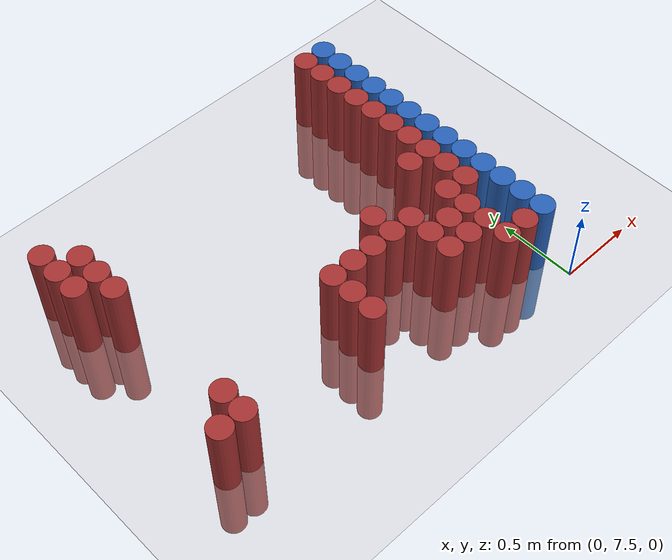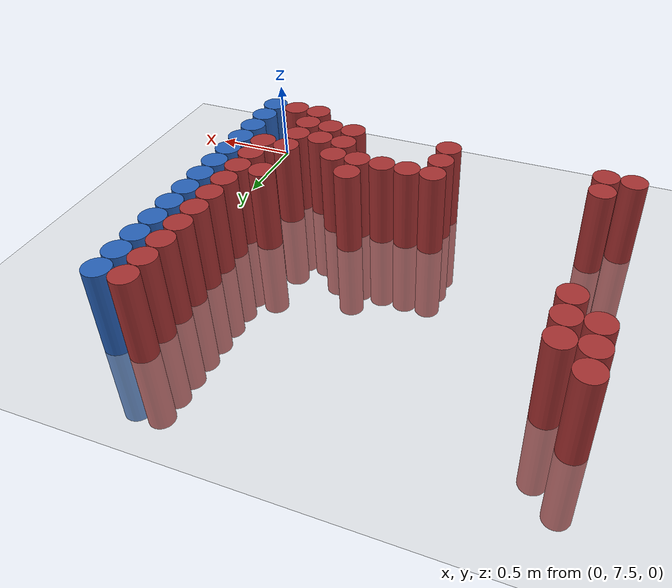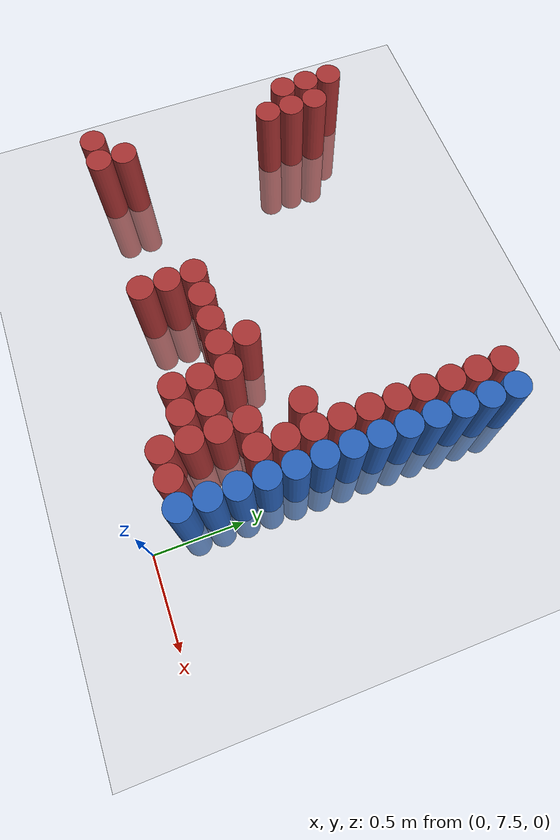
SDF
<sdf version="1.6">
 <world name="default">
  <model name="ground_plane">
   <static>1</static>
   <link name="link">
    <collision name="collision">
     <geometry><plane><normal>0 0 1</normal><size>100 100</size></plane></geometry>
     <surface><friction><ode><mu>100</mu><mu2>50</mu2></ode></friction></surface>
    </collision>
    <visual name="visual">
     <cast_shadows>0</cast_shadows>
     <geometry><plane><normal>0 0 1</normal><size>100 100</size></plane></geometry>
     <material>
      <script><uri>file://media/materials/scripts/gazebo.material</uri><name>Gazebo/Grey</name></script>
     </material>
    </visual>
   </link>
  </model>
  <model name="unit_cylinder_241">
   <static>1</static>
   <pose>-2.325000 7.875000 0.000000 0.000000 0.000000 0.000000</pose>
   <link name="link">
    <inertial>
     <mass>1</mass>
     <inertia><ixx>0.145833</ixx><ixy>0</ixy><ixz>0</ixz><iyy>0.145833</iyy><iyz>0</iyz><izz>0.125</izz></inertia>
    </inertial>
    <collision name="collision">
     <geometry><cylinder><radius>0.075000</radius><length>1</length></cylinder></geometry>
    </collision>
    <visual name="visual">
     <geometry><cylinder><radius>0.075000</radius><length>1</length></cylinder></geometry>
     <material>
      <ambient>0.648000 0.192000 0.192000 1</ambient>
      <diffuse>0.648000 0.192000 0.192000 1</diffuse>
     </material>
     <material>
      <script><name>Gazebo/Grey</name><uri>file://media/materials/scripts/gazebo.material</uri></script>
     </material>
    </visual>
   </link>
  </model>
  <model name="unit_cylinder_242">
   <static>1</static>
   <pose>-2.325000 9.075000 0.000000 0.000000 0.000000 0.000000</pose>
   <link name="link">
    <inertial>
     <mass>1</mass>
     <inertia><ixx>0.145833</ixx><ixy>0</ixy><ixz>0</ixz><iyy>0.145833</iyy><iyz>0</iyz><izz>0.125</izz></inertia>
    </inertial>
    <collision name="collision">
     <geometry><cylinder><radius>0.075000</radius><length>1</length></cylinder></geometry>
    </collision>
    <visual name="visual">
     <geometry><cylinder><radius>0.075000</radius><length>1</length></cylinder></geometry>
     <material>
      <ambient>0.648000 0.192000 0.192000 1</ambient>
      <diffuse>0.648000 0.192000 0.192000 1</diffuse>
     </material>
     <material>
      <script><name>Gazebo/Grey</name><uri>file://media/materials/scripts/gazebo.material</uri></script>
     </material>
    </visual>
   </link>
  </model>
  <model name="unit_cylinder_243">
   <static>1</static>
   <pose>-2.325000 9.225000 0.000000 0.000000 0.000000 0.000000</pose>
   <link name="link">
    <inertial>
     <mass>1</mass>
     <inertia><ixx>0.145833</ixx><ixy>0</ixy><ixz>0</ixz><iyy>0.145833</iyy><iyz>0</iyz><izz>0.125</izz></inertia>
    </inertial>
    <collision name="collision">
     <geometry><cylinder><radius>0.075000</radius><length>1</length></cylinder></geometry>
    </collision>
    <visual name="visual">
     <geometry><cylinder><radius>0.075000</radius><length>1</length></cylinder></geometry>
     <material>
      <ambient>0.648000 0.192000 0.192000 1</ambient>
      <diffuse>0.648000 0.192000 0.192000 1</diffuse>
     </material>
     <material>
      <script><name>Gazebo/Grey</name><uri>file://media/materials/scripts/gazebo.material</uri></script>
     </material>
    </visual>
   </link>
  </model>
  <model name="unit_cylinder_244">
   <static>1</static>
   <pose>-2.325000 9.375000 0.000000 0.000000 0.000000 0.000000</pose>
   <link name="link">
    <inertial>
     <mass>1</mass>
     <inertia><ixx>0.145833</ixx><ixy>0</ixy><ixz>0</ixz><iyy>0.145833</iyy><iyz>0</iyz><izz>0.125</izz></inertia>
    </inertial>
    <collision name="collision">
     <geometry><cylinder><radius>0.075000</radius><length>1</length></cylinder></geometry>
    </collision>
    <visual name="visual">
     <geometry><cylinder><radius>0.075000</radius><length>1</length></cylinder></geometry>
     <material>
      <ambient>0.648000 0.192000 0.192000 1</ambient>
      <diffuse>0.648000 0.192000 0.192000 1</diffuse>
     </material>
     <material>
      <script><name>Gazebo/Grey</name><uri>file://media/materials/scripts/gazebo.material</uri></script>
     </material>
    </visual>
   </link>
  </model>
  <model name="unit_cylinder_250">
   <static>1</static>
   <pose>-2.175000 7.875000 0.000000 0.000000 0.000000 0.000000</pose>
   <link name="link">
    <inertial>
     <mass>1</mass>
     <inertia><ixx>0.145833</ixx><ixy>0</ixy><ixz>0</ixz><iyy>0.145833</iyy><iyz>0</iyz><izz>0.125</izz></inertia>
    </inertial>
    <collision name="collision">
     <geometry><cylinder><radius>0.075000</radius><length>1</length></cylinder></geometry>
    </collision>
    <visual name="visual">
     <geometry><cylinder><radius>0.075000</radius><length>1</length></cylinder></geometry>
     <material>
      <ambient>0.648000 0.192000 0.192000 1</ambient>
      <diffuse>0.648000 0.192000 0.192000 1</diffuse>
     </material>
     <material>
      <script><name>Gazebo/Grey</name><uri>file://media/materials/scripts/gazebo.material</uri></script>
     </material>
    </visual>
   </link>
  </model>
  <model name="unit_cylinder_251">
   <static>1</static>
   <pose>-2.175000 8.025000 0.000000 0.000000 0.000000 0.000000</pose>
   <link name="link">
    <inertial>
     <mass>1</mass>
     <inertia><ixx>0.145833</ixx><ixy>0</ixy><ixz>0</ixz><iyy>0.145833</iyy><iyz>0</iyz><izz>0.125</izz></inertia>
    </inertial>
    <collision name="collision">
     <geometry><cylinder><radius>0.075000</radius><length>1</length></cylinder></geometry>
    </collision>
    <visual name="visual">
     <geometry><cylinder><radius>0.075000</radius><length>1</length></cylinder></geometry>
     <material>
      <ambient>0.648000 0.192000 0.192000 1</ambient>
      <diffuse>0.648000 0.192000 0.192000 1</diffuse>
     </material>
     <material>
      <script><name>Gazebo/Grey</name><uri>file://media/materials/scripts/gazebo.material</uri></script>
     </material>
    </visual>
   </link>
  </model>
  <model name="unit_cylinder_252">
   <static>1</static>
   <pose>-2.175000 8.925000 0.000000 0.000000 0.000000 0.000000</pose>
   <link name="link">
    <inertial>
     <mass>1</mass>
     <inertia><ixx>0.145833</ixx><ixy>0</ixy><ixz>0</ixz><iyy>0.145833</iyy><iyz>0</iyz><izz>0.125</izz></inertia>
    </inertial>
    <collision name="collision">
     <geometry><cylinder><radius>0.075000</radius><length>1</length></cylinder></geometry>
    </collision>
    <visual name="visual">
     <geometry><cylinder><radius>0.075000</radius><length>1</length></cylinder></geometry>
     <material>
      <ambient>0.648000 0.192000 0.192000 1</ambient>
      <diffuse>0.648000 0.192000 0.192000 1</diffuse>
     </material>
     <material>
      <script><name>Gazebo/Grey</name><uri>file://media/materials/scripts/gazebo.material</uri></script>
     </material>
    </visual>
   </link>
  </model>
  <model name="unit_cylinder_253">
   <static>1</static>
   <pose>-2.175000 9.075000 0.000000 0.000000 0.000000 0.000000</pose>
   <link name="link">
    <inertial>
     <mass>1</mass>
     <inertia><ixx>0.145833</ixx><ixy>0</ixy><ixz>0</ixz><iyy>0.145833</iyy><iyz>0</iyz><izz>0.125</izz></inertia>
    </inertial>
    <collision name="collision">
     <geometry><cylinder><radius>0.075000</radius><length>1</length></cylinder></geometry>
    </collision>
    <visual name="visual">
     <geometry><cylinder><radius>0.075000</radius><length>1</length></cylinder></geometry>
     <material>
      <ambient>0.648000 0.192000 0.192000 1</ambient>
      <diffuse>0.648000 0.192000 0.192000 1</diffuse>
     </material>
     <material>
      <script><name>Gazebo/Grey</name><uri>file://media/materials/scripts/gazebo.material</uri></script>
     </material>
    </visual>
   </link>
  </model>
  <model name="unit_cylinder_254">
   <static>1</static>
   <pose>-2.175000 9.225000 0.000000 0.000000 0.000000 0.000000</pose>
   <link name="link">
    <inertial>
     <mass>1</mass>
     <inertia><ixx>0.145833</ixx><ixy>0</ixy><ixz>0</ixz><iyy>0.145833</iyy><iyz>0</iyz><izz>0.125</izz></inertia>
    </inertial>
    <collision name="collision">
     <geometry><cylinder><radius>0.075000</radius><length>1</length></cylinder></geometry>
    </collision>
    <visual name="visual">
     <geometry><cylinder><radius>0.075000</radius><length>1</length></cylinder></geometry>
     <material>
      <ambient>0.648000 0.192000 0.192000 1</ambient>
      <diffuse>0.648000 0.192000 0.192000 1</diffuse>
     </material>
     <material>
      <script><name>Gazebo/Grey</name><uri>file://media/materials/scripts/gazebo.material</uri></script>
     </material>
    </visual>
   </link>
  </model>
  <model name="unit_cylinder_267">
   <static>1</static>
   <pose>-1.275000 7.875000 0.000000 0.000000 0.000000 0.000000</pose>
   <link name="link">
    <inertial>
     <mass>1</mass>
     <inertia><ixx>0.145833</ixx><ixy>0</ixy><ixz>0</ixz><iyy>0.145833</iyy><iyz>0</iyz><izz>0.125</izz></inertia>
    </inertial>
    <collision name="collision">
     <geometry><cylinder><radius>0.075000</radius><length>1</length></cylinder></geometry>
    </collision>
    <visual name="visual">
     <geometry><cylinder><radius>0.075000</radius><length>1</length></cylinder></geometry>
     <material>
      <ambient>0.648000 0.192000 0.192000 1</ambient>
      <diffuse>0.648000 0.192000 0.192000 1</diffuse>
     </material>
     <material>
      <script><name>Gazebo/Grey</name><uri>file://media/materials/scripts/gazebo.material</uri></script>
     </material>
    </visual>
   </link>
  </model>
  <model name="unit_cylinder_268">
   <static>1</static>
   <pose>-1.275000 8.025000 0.000000 0.000000 0.000000 0.000000</pose>
   <link name="link">
    <inertial>
     <mass>1</mass>
     <inertia><ixx>0.145833</ixx><ixy>0</ixy><ixz>0</ixz><iyy>0.145833</iyy><iyz>0</iyz><izz>0.125</izz></inertia>
    </inertial>
    <collision name="collision">
     <geometry><cylinder><radius>0.075000</radius><length>1</length></cylinder></geometry>
    </collision>
    <visual name="visual">
     <geometry><cylinder><radius>0.075000</radius><length>1</length></cylinder></geometry>
     <material>
      <ambient>0.648000 0.192000 0.192000 1</ambient>
      <diffuse>0.648000 0.192000 0.192000 1</diffuse>
     </material>
     <material>
      <script><name>Gazebo/Grey</name><uri>file://media/materials/scripts/gazebo.material</uri></script>
     </material>
    </visual>
   </link>
  </model>
  <model name="unit_cylinder_269">
   <static>1</static>
   <pose>-1.275000 8.175000 0.000000 0.000000 0.000000 0.000000</pose>
   <link name="link">
    <inertial>
     <mass>1</mass>
     <inertia><ixx>0.145833</ixx><ixy>0</ixy><ixz>0</ixz><iyy>0.145833</iyy><iyz>0</iyz><izz>0.125</izz></inertia>
    </inertial>
    <collision name="collision">
     <geometry><cylinder><radius>0.075000</radius><length>1</length></cylinder></geometry>
    </collision>
    <visual name="visual">
     <geometry><cylinder><radius>0.075000</radius><length>1</length></cylinder></geometry>
     <material>
      <ambient>0.648000 0.192000 0.192000 1</ambient>
      <diffuse>0.648000 0.192000 0.192000 1</diffuse>
     </material>
     <material>
      <script><name>Gazebo/Grey</name><uri>file://media/materials/scripts/gazebo.material</uri></script>
     </material>
    </visual>
   </link>
  </model>
  <model name="unit_cylinder_271">
   <static>1</static>
   <pose>-1.125000 8.175000 0.000000 0.000000 0.000000 0.000000</pose>
   <link name="link">
    <inertial>
     <mass>1</mass>
     <inertia><ixx>0.145833</ixx><ixy>0</ixy><ixz>0</ixz><iyy>0.145833</iyy><iyz>0</iyz><izz>0.125</izz></inertia>
    </inertial>
    <collision name="collision">
     <geometry><cylinder><radius>0.075000</radius><length>1</length></cylinder></geometry>
    </collision>
    <visual name="visual">
     <geometry><cylinder><radius>0.075000</radius><length>1</length></cylinder></geometry>
     <material>
      <ambient>0.648000 0.192000 0.192000 1</ambient>
      <diffuse>0.648000 0.192000 0.192000 1</diffuse>
     </material>
     <material>
      <script><name>Gazebo/Grey</name><uri>file://media/materials/scripts/gazebo.material</uri></script>
     </material>
    </visual>
   </link>
  </model>
  <model name="unit_cylinder_274">
   <static>1</static>
   <pose>-0.975000 8.175000 0.000000 0.000000 0.000000 0.000000</pose>
   <link name="link">
    <inertial>
     <mass>1</mass>
     <inertia><ixx>0.145833</ixx><ixy>0</ixy><ixz>0</ixz><iyy>0.145833</iyy><iyz>0</iyz><izz>0.125</izz></inertia>
    </inertial>
    <collision name="collision">
     <geometry><cylinder><radius>0.075000</radius><length>1</length></cylinder></geometry>
    </collision>
    <visual name="visual">
     <geometry><cylinder><radius>0.075000</radius><length>1</length></cylinder></geometry>
     <material>
      <ambient>0.648000 0.192000 0.192000 1</ambient>
      <diffuse>0.648000 0.192000 0.192000 1</diffuse>
     </material>
     <material>
      <script><name>Gazebo/Grey</name><uri>file://media/materials/scripts/gazebo.material</uri></script>
     </material>
    </visual>
   </link>
  </model>
  <model name="unit_cylinder_277">
   <static>1</static>
   <pose>-0.825000 8.175000 0.000000 0.000000 0.000000 0.000000</pose>
   <link name="link">
    <inertial>
     <mass>1</mass>
     <inertia><ixx>0.145833</ixx><ixy>0</ixy><ixz>0</ixz><iyy>0.145833</iyy><iyz>0</iyz><izz>0.125</izz></inertia>
    </inertial>
    <collision name="collision">
     <geometry><cylinder><radius>0.075000</radius><length>1</length></cylinder></geometry>
    </collision>
    <visual name="visual">
     <geometry><cylinder><radius>0.075000</radius><length>1</length></cylinder></geometry>
     <material>
      <ambient>0.648000 0.192000 0.192000 1</ambient>
      <diffuse>0.648000 0.192000 0.192000 1</diffuse>
     </material>
     <material>
      <script><name>Gazebo/Grey</name><uri>file://media/materials/scripts/gazebo.material</uri></script>
     </material>
    </visual>
   </link>
  </model>
  <model name="unit_cylinder_278">
   <static>1</static>
   <pose>-0.825000 8.325000 0.000000 0.000000 0.000000 0.000000</pose>
   <link name="link">
    <inertial>
     <mass>1</mass>
     <inertia><ixx>0.145833</ixx><ixy>0</ixy><ixz>0</ixz><iyy>0.145833</iyy><iyz>0</iyz><izz>0.125</izz></inertia>
    </inertial>
    <collision name="collision">
     <geometry><cylinder><radius>0.075000</radius><length>1</length></cylinder></geometry>
    </collision>
    <visual name="visual">
     <geometry><cylinder><radius>0.075000</radius><length>1</length></cylinder></geometry>
     <material>
      <ambient>0.648000 0.192000 0.192000 1</ambient>
      <diffuse>0.648000 0.192000 0.192000 1</diffuse>
     </material>
     <material>
      <script><name>Gazebo/Grey</name><uri>file://media/materials/scripts/gazebo.material</uri></script>
     </material>
    </visual>
   </link>
  </model>
  <model name="unit_cylinder_280">
   <static>1</static>
   <pose>-0.675000 7.875000 0.000000 0.000000 0.000000 0.000000</pose>
   <link name="link">
    <inertial>
     <mass>1</mass>
     <inertia><ixx>0.145833</ixx><ixy>0</ixy><ixz>0</ixz><iyy>0.145833</iyy><iyz>0</iyz><izz>0.125</izz></inertia>
    </inertial>
    <collision name="collision">
     <geometry><cylinder><radius>0.075000</radius><length>1</length></cylinder></geometry>
    </collision>
    <visual name="visual">
     <geometry><cylinder><radius>0.075000</radius><length>1</length></cylinder></geometry>
     <material>
      <ambient>0.648000 0.192000 0.192000 1</ambient>
      <diffuse>0.648000 0.192000 0.192000 1</diffuse>
     </material>
     <material>
      <script><name>Gazebo/Grey</name><uri>file://media/materials/scripts/gazebo.material</uri></script>
     </material>
    </visual>
   </link>
  </model>
  <model name="unit_cylinder_281">
   <static>1</static>
   <pose>-0.675000 8.025000 0.000000 0.000000 0.000000 0.000000</pose>
   <link name="link">
    <inertial>
     <mass>1</mass>
     <inertia><ixx>0.145833</ixx><ixy>0</ixy><ixz>0</ixz><iyy>0.145833</iyy><iyz>0</iyz><izz>0.125</izz></inertia>
    </inertial>
    <collision name="collision">
     <geometry><cylinder><radius>0.075000</radius><length>1</length></cylinder></geometry>
    </collision>
    <visual name="visual">
     <geometry><cylinder><radius>0.075000</radius><length>1</length></cylinder></geometry>
     <material>
      <ambient>0.648000 0.192000 0.192000 1</ambient>
      <diffuse>0.648000 0.192000 0.192000 1</diffuse>
     </material>
     <material>
      <script><name>Gazebo/Grey</name><uri>file://media/materials/scripts/gazebo.material</uri></script>
     </material>
    </visual>
   </link>
  </model>
  <model name="unit_cylinder_282">
   <static>1</static>
   <pose>-0.675000 8.175000 0.000000 0.000000 0.000000 0.000000</pose>
   <link name="link">
    <inertial>
     <mass>1</mass>
     <inertia><ixx>0.145833</ixx><ixy>0</ixy><ixz>0</ixz><iyy>0.145833</iyy><iyz>0</iyz><izz>0.125</izz></inertia>
    </inertial>
    <collision name="collision">
     <geometry><cylinder><radius>0.075000</radius><length>1</length></cylinder></geometry>
    </collision>
    <visual name="visual">
     <geometry><cylinder><radius>0.075000</radius><length>1</length></cylinder></geometry>
     <material>
      <ambient>0.648000 0.192000 0.192000 1</ambient>
      <diffuse>0.648000 0.192000 0.192000 1</diffuse>
     </material>
     <material>
      <script><name>Gazebo/Grey</name><uri>file://media/materials/scripts/gazebo.material</uri></script>
     </material>
    </visual>
   </link>
  </model>
  <model name="unit_cylinder_283">
   <static>1</static>
   <pose>-0.525000 7.875000 0.000000 0.000000 0.000000 0.000000</pose>
   <link name="link">
    <inertial>
     <mass>1</mass>
     <inertia><ixx>0.145833</ixx><ixy>0</ixy><ixz>0</ixz><iyy>0.145833</iyy><iyz>0</iyz><izz>0.125</izz></inertia>
    </inertial>
    <collision name="collision">
     <geometry><cylinder><radius>0.075000</radius><length>1</length></cylinder></geometry>
    </collision>
    <visual name="visual">
     <geometry><cylinder><radius>0.075000</radius><length>1</length></cylinder></geometry>
     <material>
      <ambient>0.648000 0.192000 0.192000 1</ambient>
      <diffuse>0.648000 0.192000 0.192000 1</diffuse>
     </material>
     <material>
      <script><name>Gazebo/Grey</name><uri>file://media/materials/scripts/gazebo.material</uri></script>
     </material>
    </visual>
   </link>
  </model>
  <model name="unit_cylinder_284">
   <static>1</static>
   <pose>-0.525000 8.025000 0.000000 0.000000 0.000000 0.000000</pose>
   <link name="link">
    <inertial>
     <mass>1</mass>
     <inertia><ixx>0.145833</ixx><ixy>0</ixy><ixz>0</ixz><iyy>0.145833</iyy><iyz>0</iyz><izz>0.125</izz></inertia>
    </inertial>
    <collision name="collision">
     <geometry><cylinder><radius>0.075000</radius><length>1</length></cylinder></geometry>
    </collision>
    <visual name="visual">
     <geometry><cylinder><radius>0.075000</radius><length>1</length></cylinder></geometry>
     <material>
      <ambient>0.648000 0.192000 0.192000 1</ambient>
      <diffuse>0.648000 0.192000 0.192000 1</diffuse>
     </material>
     <material>
      <script><name>Gazebo/Grey</name><uri>file://media/materials/scripts/gazebo.material</uri></script>
     </material>
    </visual>
   </link>
  </model>
  <model name="unit_cylinder_289">
   <static>1</static>
   <pose>-0.375000 7.725000 0.000000 0.000000 0.000000 0.000000</pose>
   <link name="link">
    <inertial>
     <mass>1</mass>
     <inertia><ixx>0.145833</ixx><ixy>0</ixy><ixz>0</ixz><iyy>0.145833</iyy><iyz>0</iyz><izz>0.125</izz></inertia>
    </inertial>
    <collision name="collision">
     <geometry><cylinder><radius>0.075000</radius><length>1</length></cylinder></geometry>
    </collision>
    <visual name="visual">
     <geometry><cylinder><radius>0.075000</radius><length>1</length></cylinder></geometry>
     <material>
      <ambient>0.648000 0.192000 0.192000 1</ambient>
      <diffuse>0.648000 0.192000 0.192000 1</diffuse>
     </material>
     <material>
      <script><name>Gazebo/Grey</name><uri>file://media/materials/scripts/gazebo.material</uri></script>
     </material>
    </visual>
   </link>
  </model>
  <model name="unit_cylinder_290">
   <static>1</static>
   <pose>-0.375000 7.875000 0.000000 0.000000 0.000000 0.000000</pose>
   <link name="link">
    <inertial>
     <mass>1</mass>
     <inertia><ixx>0.145833</ixx><ixy>0</ixy><ixz>0</ixz><iyy>0.145833</iyy><iyz>0</iyz><izz>0.125</izz></inertia>
    </inertial>
    <collision name="collision">
     <geometry><cylinder><radius>0.075000</radius><length>1</length></cylinder></geometry>
    </collision>
    <visual name="visual">
     <geometry><cylinder><radius>0.075000</radius><length>1</length></cylinder></geometry>
     <material>
      <ambient>0.648000 0.192000 0.192000 1</ambient>
      <diffuse>0.648000 0.192000 0.192000 1</diffuse>
     </material>
     <material>
      <script><name>Gazebo/Grey</name><uri>file://media/materials/scripts/gazebo.material</uri></script>
     </material>
    </visual>
   </link>
  </model>
  <model name="unit_cylinder_291">
   <static>1</static>
   <pose>-0.375000 8.025000 0.000000 0.000000 0.000000 0.000000</pose>
   <link name="link">
    <inertial>
     <mass>1</mass>
     <inertia><ixx>0.145833</ixx><ixy>0</ixy><ixz>0</ixz><iyy>0.145833</iyy><iyz>0</iyz><izz>0.125</izz></inertia>
    </inertial>
    <collision name="collision">
     <geometry><cylinder><radius>0.075000</radius><length>1</length></cylinder></geometry>
    </collision>
    <visual name="visual">
     <geometry><cylinder><radius>0.075000</radius><length>1</length></cylinder></geometry>
     <material>
      <ambient>0.648000 0.192000 0.192000 1</ambient>
      <diffuse>0.648000 0.192000 0.192000 1</diffuse>
     </material>
     <material>
      <script><name>Gazebo/Grey</name><uri>file://media/materials/scripts/gazebo.material</uri></script>
     </material>
    </visual>
   </link>
  </model>
  <model name="unit_cylinder_292">
   <static>1</static>
   <pose>-0.375000 8.175000 0.000000 0.000000 0.000000 0.000000</pose>
   <link name="link">
    <inertial>
     <mass>1</mass>
     <inertia><ixx>0.145833</ixx><ixy>0</ixy><ixz>0</ixz><iyy>0.145833</iyy><iyz>0</iyz><izz>0.125</izz></inertia>
    </inertial>
    <collision name="collision">
     <geometry><cylinder><radius>0.075000</radius><length>1</length></cylinder></geometry>
    </collision>
    <visual name="visual">
     <geometry><cylinder><radius>0.075000</radius><length>1</length></cylinder></geometry>
     <material>
      <ambient>0.648000 0.192000 0.192000 1</ambient>
      <diffuse>0.648000 0.192000 0.192000 1</diffuse>
     </material>
     <material>
      <script><name>Gazebo/Grey</name><uri>file://media/materials/scripts/gazebo.material</uri></script>
     </material>
    </visual>
   </link>
  </model>
  <model name="unit_cylinder_293">
   <static>1</static>
   <pose>-0.375000 8.475000 0.000000 0.000000 0.000000 0.000000</pose>
   <link name="link">
    <inertial>
     <mass>1</mass>
     <inertia><ixx>0.145833</ixx><ixy>0</ixy><ixz>0</ixz><iyy>0.145833</iyy><iyz>0</iyz><izz>0.125</izz></inertia>
    </inertial>
    <collision name="collision">
     <geometry><cylinder><radius>0.075000</radius><length>1</length></cylinder></geometry>
    </collision>
    <visual name="visual">
     <geometry><cylinder><radius>0.075000</radius><length>1</length></cylinder></geometry>
     <material>
      <ambient>0.648000 0.192000 0.192000 1</ambient>
      <diffuse>0.648000 0.192000 0.192000 1</diffuse>
     </material>
     <material>
      <script><name>Gazebo/Grey</name><uri>file://media/materials/scripts/gazebo.material</uri></script>
     </material>
    </visual>
   </link>
  </model>
  <model name="unit_cylinder_309">
   <static>1</static>
   <pose>-0.225000 7.725000 0.000000 0.000000 0.000000 0.000000</pose>
   <link name="link">
    <inertial>
     <mass>1</mass>
     <inertia><ixx>0.145833</ixx><ixy>0</ixy><ixz>0</ixz><iyy>0.145833</iyy><iyz>0</iyz><izz>0.125</izz></inertia>
    </inertial>
    <collision name="collision">
     <geometry><cylinder><radius>0.075000</radius><length>1</length></cylinder></geometry>
    </collision>
    <visual name="visual">
     <geometry><cylinder><radius>0.075000</radius><length>1</length></cylinder></geometry>
     <material>
      <ambient>0.648000 0.192000 0.192000 1</ambient>
      <diffuse>0.648000 0.192000 0.192000 1</diffuse>
     </material>
     <material>
      <script><name>Gazebo/Grey</name><uri>file://media/materials/scripts/gazebo.material</uri></script>
     </material>
    </visual>
   </link>
  </model>
  <model name="unit_cylinder_310">
   <static>1</static>
   <pose>-0.225000 8.175000 0.000000 0.000000 0.000000 0.000000</pose>
   <link name="link">
    <inertial>
     <mass>1</mass>
     <inertia><ixx>0.145833</ixx><ixy>0</ixy><ixz>0</ixz><iyy>0.145833</iyy><iyz>0</iyz><izz>0.125</izz></inertia>
    </inertial>
    <collision name="collision">
     <geometry><cylinder><radius>0.075000</radius><length>1</length></cylinder></geometry>
    </collision>
    <visual name="visual">
     <geometry><cylinder><radius>0.075000</radius><length>1</length></cylinder></geometry>
     <material>
      <ambient>0.648000 0.192000 0.192000 1</ambient>
      <diffuse>0.648000 0.192000 0.192000 1</diffuse>
     </material>
     <material>
      <script><name>Gazebo/Grey</name><uri>file://media/materials/scripts/gazebo.material</uri></script>
     </material>
    </visual>
   </link>
  </model>
  <model name="unit_cylinder_311">
   <static>1</static>
   <pose>-0.225000 8.325000 0.000000 0.000000 0.000000 0.000000</pose>
   <link name="link">
    <inertial>
     <mass>1</mass>
     <inertia><ixx>0.145833</ixx><ixy>0</ixy><ixz>0</ixz><iyy>0.145833</iyy><iyz>0</iyz><izz>0.125</izz></inertia>
    </inertial>
    <collision name="collision">
     <geometry><cylinder><radius>0.075000</radius><length>1</length></cylinder></geometry>
    </collision>
    <visual name="visual">
     <geometry><cylinder><radius>0.075000</radius><length>1</length></cylinder></geometry>
     <material>
      <ambient>0.648000 0.192000 0.192000 1</ambient>
      <diffuse>0.648000 0.192000 0.192000 1</diffuse>
     </material>
     <material>
      <script><name>Gazebo/Grey</name><uri>file://media/materials/scripts/gazebo.material</uri></script>
     </material>
    </visual>
   </link>
  </model>
  <model name="unit_cylinder_312">
   <static>1</static>
   <pose>-0.225000 8.475000 0.000000 0.000000 0.000000 0.000000</pose>
   <link name="link">
    <inertial>
     <mass>1</mass>
     <inertia><ixx>0.145833</ixx><ixy>0</ixy><ixz>0</ixz><iyy>0.145833</iyy><iyz>0</iyz><izz>0.125</izz></inertia>
    </inertial>
    <collision name="collision">
     <geometry><cylinder><radius>0.075000</radius><length>1</length></cylinder></geometry>
    </collision>
    <visual name="visual">
     <geometry><cylinder><radius>0.075000</radius><length>1</length></cylinder></geometry>
     <material>
      <ambient>0.648000 0.192000 0.192000 1</ambient>
      <diffuse>0.648000 0.192000 0.192000 1</diffuse>
     </material>
     <material>
      <script><name>Gazebo/Grey</name><uri>file://media/materials/scripts/gazebo.material</uri></script>
     </material>
    </visual>
   </link>
  </model>
  <model name="unit_cylinder_313">
   <static>1</static>
   <pose>-0.225000 8.625000 0.000000 0.000000 0.000000 0.000000</pose>
   <link name="link">
    <inertial>
     <mass>1</mass>
     <inertia><ixx>0.145833</ixx><ixy>0</ixy><ixz>0</ixz><iyy>0.145833</iyy><iyz>0</iyz><izz>0.125</izz></inertia>
    </inertial>
    <collision name="collision">
     <geometry><cylinder><radius>0.075000</radius><length>1</length></cylinder></geometry>
    </collision>
    <visual name="visual">
     <geometry><cylinder><radius>0.075000</radius><length>1</length></cylinder></geometry>
     <material>
      <ambient>0.648000 0.192000 0.192000 1</ambient>
      <diffuse>0.648000 0.192000 0.192000 1</diffuse>
     </material>
     <material>
      <script><name>Gazebo/Grey</name><uri>file://media/materials/scripts/gazebo.material</uri></script>
     </material>
    </visual>
   </link>
  </model>
  <model name="unit_cylinder_314">
   <static>1</static>
   <pose>-0.225000 8.775000 0.000000 0.000000 0.000000 0.000000</pose>
   <link name="link">
    <inertial>
     <mass>1</mass>
     <inertia><ixx>0.145833</ixx><ixy>0</ixy><ixz>0</ixz><iyy>0.145833</iyy><iyz>0</iyz><izz>0.125</izz></inertia>
    </inertial>
    <collision name="collision">
     <geometry><cylinder><radius>0.075000</radius><length>1</length></cylinder></geometry>
    </collision>
    <visual name="visual">
     <geometry><cylinder><radius>0.075000</radius><length>1</length></cylinder></geometry>
     <material>
      <ambient>0.648000 0.192000 0.192000 1</ambient>
      <diffuse>0.648000 0.192000 0.192000 1</diffuse>
     </material>
     <material>
      <script><name>Gazebo/Grey</name><uri>file://media/materials/scripts/gazebo.material</uri></script>
     </material>
    </visual>
   </link>
  </model>
  <model name="unit_cylinder_315">
   <static>1</static>
   <pose>-0.225000 8.925000 0.000000 0.000000 0.000000 0.000000</pose>
   <link name="link">
    <inertial>
     <mass>1</mass>
     <inertia><ixx>0.145833</ixx><ixy>0</ixy><ixz>0</ixz><iyy>0.145833</iyy><iyz>0</iyz><izz>0.125</izz></inertia>
    </inertial>
    <collision name="collision">
     <geometry><cylinder><radius>0.075000</radius><length>1</length></cylinder></geometry>
    </collision>
    <visual name="visual">
     <geometry><cylinder><radius>0.075000</radius><length>1</length></cylinder></geometry>
     <material>
      <ambient>0.648000 0.192000 0.192000 1</ambient>
      <diffuse>0.648000 0.192000 0.192000 1</diffuse>
     </material>
     <material>
      <script><name>Gazebo/Grey</name><uri>file://media/materials/scripts/gazebo.material</uri></script>
     </material>
    </visual>
   </link>
  </model>
  <model name="unit_cylinder_316">
   <static>1</static>
   <pose>-0.225000 9.075000 0.000000 0.000000 0.000000 0.000000</pose>
   <link name="link">
    <inertial>
     <mass>1</mass>
     <inertia><ixx>0.145833</ixx><ixy>0</ixy><ixz>0</ixz><iyy>0.145833</iyy><iyz>0</iyz><izz>0.125</izz></inertia>
    </inertial>
    <collision name="collision">
     <geometry><cylinder><radius>0.075000</radius><length>1</length></cylinder></geometry>
    </collision>
    <visual name="visual">
     <geometry><cylinder><radius>0.075000</radius><length>1</length></cylinder></geometry>
     <material>
      <ambient>0.648000 0.192000 0.192000 1</ambient>
      <diffuse>0.648000 0.192000 0.192000 1</diffuse>
     </material>
     <material>
      <script><name>Gazebo/Grey</name><uri>file://media/materials/scripts/gazebo.material</uri></script>
     </material>
    </visual>
   </link>
  </model>
  <model name="unit_cylinder_317">
   <static>1</static>
   <pose>-0.225000 9.225000 0.000000 0.000000 0.000000 0.000000</pose>
   <link name="link">
    <inertial>
     <mass>1</mass>
     <inertia><ixx>0.145833</ixx><ixy>0</ixy><ixz>0</ixz><iyy>0.145833</iyy><iyz>0</iyz><izz>0.125</izz></inertia>
    </inertial>
    <collision name="collision">
     <geometry><cylinder><radius>0.075000</radius><length>1</length></cylinder></geometry>
    </collision>
    <visual name="visual">
     <geometry><cylinder><radius>0.075000</radius><length>1</length></cylinder></geometry>
     <material>
      <ambient>0.648000 0.192000 0.192000 1</ambient>
      <diffuse>0.648000 0.192000 0.192000 1</diffuse>
     </material>
     <material>
      <script><name>Gazebo/Grey</name><uri>file://media/materials/scripts/gazebo.material</uri></script>
     </material>
    </visual>
   </link>
  </model>
  <model name="unit_cylinder_318">
   <static>1</static>
   <pose>-0.225000 9.375000 0.000000 0.000000 0.000000 0.000000</pose>
   <link name="link">
    <inertial>
     <mass>1</mass>
     <inertia><ixx>0.145833</ixx><ixy>0</ixy><ixz>0</ixz><iyy>0.145833</iyy><iyz>0</iyz><izz>0.125</izz></inertia>
    </inertial>
    <collision name="collision">
     <geometry><cylinder><radius>0.075000</radius><length>1</length></cylinder></geometry>
    </collision>
    <visual name="visual">
     <geometry><cylinder><radius>0.075000</radius><length>1</length></cylinder></geometry>
     <material>
      <ambient>0.648000 0.192000 0.192000 1</ambient>
      <diffuse>0.648000 0.192000 0.192000 1</diffuse>
     </material>
     <material>
      <script><name>Gazebo/Grey</name><uri>file://media/materials/scripts/gazebo.material</uri></script>
     </material>
    </visual>
   </link>
  </model>
  <model name="unit_cylinder_319">
   <static>1</static>
   <pose>-0.225000 9.525000 0.000000 0.000000 0.000000 0.000000</pose>
   <link name="link">
    <inertial>
     <mass>1</mass>
     <inertia><ixx>0.145833</ixx><ixy>0</ixy><ixz>0</ixz><iyy>0.145833</iyy><iyz>0</iyz><izz>0.125</izz></inertia>
    </inertial>
    <collision name="collision">
     <geometry><cylinder><radius>0.075000</radius><length>1</length></cylinder></geometry>
    </collision>
    <visual name="visual">
     <geometry><cylinder><radius>0.075000</radius><length>1</length></cylinder></geometry>
     <material>
      <ambient>0.648000 0.192000 0.192000 1</ambient>
      <diffuse>0.648000 0.192000 0.192000 1</diffuse>
     </material>
     <material>
      <script><name>Gazebo/Grey</name><uri>file://media/materials/scripts/gazebo.material</uri></script>
     </material>
    </visual>
   </link>
  </model>
  <model name="unit_cylinder_337">
   <static>1</static>
   <pose>-0.075000 7.725000 0.000000 0.000000 0.000000 0.000000</pose>
   <link name="link">
    <inertial>
     <mass>1</mass>
     <inertia><ixx>0.145833</ixx><ixy>0</ixy><ixz>0</ixz><iyy>0.145833</iyy><iyz>0</iyz><izz>0.125</izz></inertia>
    </inertial>
    <collision name="collision">
     <geometry><cylinder><radius>0.075000</radius><length>1</length></cylinder></geometry>
    </collision>
    <visual name="visual">
     <geometry><cylinder><radius>0.075000</radius><length>1</length></cylinder></geometry>
     <material>
      <ambient>0.152000 0.379000 0.720000 1</ambient>
      <diffuse>0.152000 0.379000 0.720000 1</diffuse>
     </material>
     <material>
      <script><name>Gazebo/Grey</name><uri>file://media/materials/scripts/gazebo.material</uri></script>
     </material>
    </visual>
   </link>
  </model>
  <model name="unit_cylinder_338">
   <static>1</static>
   <pose>-0.075000 7.875000 0.000000 0.000000 0.000000 0.000000</pose>
   <link name="link">
    <inertial>
     <mass>1</mass>
     <inertia><ixx>0.145833</ixx><ixy>0</ixy><ixz>0</ixz><iyy>0.145833</iyy><iyz>0</iyz><izz>0.125</izz></inertia>
    </inertial>
    <collision name="collision">
     <geometry><cylinder><radius>0.075000</radius><length>1</length></cylinder></geometry>
    </collision>
    <visual name="visual">
     <geometry><cylinder><radius>0.075000</radius><length>1</length></cylinder></geometry>
     <material>
      <ambient>0.152000 0.379000 0.720000 1</ambient>
      <diffuse>0.152000 0.379000 0.720000 1</diffuse>
     </material>
     <material>
      <script><name>Gazebo/Grey</name><uri>file://media/materials/scripts/gazebo.material</uri></script>
     </material>
    </visual>
   </link>
  </model>
  <model name="unit_cylinder_339">
   <static>1</static>
   <pose>-0.075000 8.025000 0.000000 0.000000 0.000000 0.000000</pose>
   <link name="link">
    <inertial>
     <mass>1</mass>
     <inertia><ixx>0.145833</ixx><ixy>0</ixy><ixz>0</ixz><iyy>0.145833</iyy><iyz>0</iyz><izz>0.125</izz></inertia>
    </inertial>
    <collision name="collision">
     <geometry><cylinder><radius>0.075000</radius><length>1</length></cylinder></geometry>
    </collision>
    <visual name="visual">
     <geometry><cylinder><radius>0.075000</radius><length>1</length></cylinder></geometry>
     <material>
      <ambient>0.152000 0.379000 0.720000 1</ambient>
      <diffuse>0.152000 0.379000 0.720000 1</diffuse>
     </material>
     <material>
      <script><name>Gazebo/Grey</name><uri>file://media/materials/scripts/gazebo.material</uri></script>
     </material>
    </visual>
   </link>
  </model>
  <model name="unit_cylinder_340">
   <static>1</static>
   <pose>-0.075000 8.175000 0.000000 0.000000 0.000000 0.000000</pose>
   <link name="link">
    <inertial>
     <mass>1</mass>
     <inertia><ixx>0.145833</ixx><ixy>0</ixy><ixz>0</ixz><iyy>0.145833</iyy><iyz>0</iyz><izz>0.125</izz></inertia>
    </inertial>
    <collision name="collision">
     <geometry><cylinder><radius>0.075000</radius><length>1</length></cylinder></geometry>
    </collision>
    <visual name="visual">
     <geometry><cylinder><radius>0.075000</radius><length>1</length></cylinder></geometry>
     <material>
      <ambient>0.152000 0.379000 0.720000 1</ambient>
      <diffuse>0.152000 0.379000 0.720000 1</diffuse>
     </material>
     <material>
      <script><name>Gazebo/Grey</name><uri>file://media/materials/scripts/gazebo.material</uri></script>
     </material>
    </visual>
   </link>
  </model>
  <model name="unit_cylinder_341">
   <static>1</static>
   <pose>-0.075000 8.325000 0.000000 0.000000 0.000000 0.000000</pose>
   <link name="link">
    <inertial>
     <mass>1</mass>
     <inertia><ixx>0.145833</ixx><ixy>0</ixy><ixz>0</ixz><iyy>0.145833</iyy><iyz>0</iyz><izz>0.125</izz></inertia>
    </inertial>
    <collision name="collision">
     <geometry><cylinder><radius>0.075000</radius><length>1</length></cylinder></geometry>
    </collision>
    <visual name="visual">
     <geometry><cylinder><radius>0.075000</radius><length>1</length></cylinder></geometry>
     <material>
      <ambient>0.152000 0.379000 0.720000 1</ambient>
      <diffuse>0.152000 0.379000 0.720000 1</diffuse>
     </material>
     <material>
      <script><name>Gazebo/Grey</name><uri>file://media/materials/scripts/gazebo.material</uri></script>
     </material>
    </visual>
   </link>
  </model>
  <model name="unit_cylinder_342">
   <static>1</static>
   <pose>-0.075000 8.475000 0.000000 0.000000 0.000000 0.000000</pose>
   <link name="link">
    <inertial>
     <mass>1</mass>
     <inertia><ixx>0.145833</ixx><ixy>0</ixy><ixz>0</ixz><iyy>0.145833</iyy><iyz>0</iyz><izz>0.125</izz></inertia>
    </inertial>
    <collision name="collision">
     <geometry><cylinder><radius>0.075000</radius><length>1</length></cylinder></geometry>
    </collision>
    <visual name="visual">
     <geometry><cylinder><radius>0.075000</radius><length>1</length></cylinder></geometry>
     <material>
      <ambient>0.152000 0.379000 0.720000 1</ambient>
      <diffuse>0.152000 0.379000 0.720000 1</diffuse>
     </material>
     <material>
      <script><name>Gazebo/Grey</name><uri>file://media/materials/scripts/gazebo.material</uri></script>
     </material>
    </visual>
   </link>
  </model>
  <model name="unit_cylinder_343">
   <static>1</static>
   <pose>-0.075000 8.625000 0.000000 0.000000 0.000000 0.000000</pose>
   <link name="link">
    <inertial>
     <mass>1</mass>
     <inertia><ixx>0.145833</ixx><ixy>0</ixy><ixz>0</ixz><iyy>0.145833</iyy><iyz>0</iyz><izz>0.125</izz></inertia>
    </inertial>
    <collision name="collision">
     <geometry><cylinder><radius>0.075000</radius><length>1</length></cylinder></geometry>
    </collision>
    <visual name="visual">
     <geometry><cylinder><radius>0.075000</radius><length>1</length></cylinder></geometry>
     <material>
      <ambient>0.152000 0.379000 0.720000 1</ambient>
      <diffuse>0.152000 0.379000 0.720000 1</diffuse>
     </material>
     <material>
      <script><name>Gazebo/Grey</name><uri>file://media/materials/scripts/gazebo.material</uri></script>
     </material>
    </visual>
   </link>
  </model>
  <model name="unit_cylinder_344">
   <static>1</static>
   <pose>-0.075000 8.775000 0.000000 0.000000 0.000000 0.000000</pose>
   <link name="link">
    <inertial>
     <mass>1</mass>
     <inertia><ixx>0.145833</ixx><ixy>0</ixy><ixz>0</ixz><iyy>0.145833</iyy><iyz>0</iyz><izz>0.125</izz></inertia>
    </inertial>
    <collision name="collision">
     <geometry><cylinder><radius>0.075000</radius><length>1</length></cylinder></geometry>
    </collision>
    <visual name="visual">
     <geometry><cylinder><radius>0.075000</radius><length>1</length></cylinder></geometry>
     <material>
      <ambient>0.152000 0.379000 0.720000 1</ambient>
      <diffuse>0.152000 0.379000 0.720000 1</diffuse>
     </material>
     <material>
      <script><name>Gazebo/Grey</name><uri>file://media/materials/scripts/gazebo.material</uri></script>
     </material>
    </visual>
   </link>
  </model>
  <model name="unit_cylinder_345">
   <static>1</static>
   <pose>-0.075000 8.925000 0.000000 0.000000 0.000000 0.000000</pose>
   <link name="link">
    <inertial>
     <mass>1</mass>
     <inertia><ixx>0.145833</ixx><ixy>0</ixy><ixz>0</ixz><iyy>0.145833</iyy><iyz>0</iyz><izz>0.125</izz></inertia>
    </inertial>
    <collision name="collision">
     <geometry><cylinder><radius>0.075000</radius><length>1</length></cylinder></geometry>
    </collision>
    <visual name="visual">
     <geometry><cylinder><radius>0.075000</radius><length>1</length></cylinder></geometry>
     <material>
      <ambient>0.152000 0.379000 0.720000 1</ambient>
      <diffuse>0.152000 0.379000 0.720000 1</diffuse>
     </material>
     <material>
      <script><name>Gazebo/Grey</name><uri>file://media/materials/scripts/gazebo.material</uri></script>
     </material>
    </visual>
   </link>
  </model>
  <model name="unit_cylinder_346">
   <static>1</static>
   <pose>-0.075000 9.075000 0.000000 0.000000 0.000000 0.000000</pose>
   <link name="link">
    <inertial>
     <mass>1</mass>
     <inertia><ixx>0.145833</ixx><ixy>0</ixy><ixz>0</ixz><iyy>0.145833</iyy><iyz>0</iyz><izz>0.125</izz></inertia>
    </inertial>
    <collision name="collision">
     <geometry><cylinder><radius>0.075000</radius><length>1</length></cylinder></geometry>
    </collision>
    <visual name="visual">
     <geometry><cylinder><radius>0.075000</radius><length>1</length></cylinder></geometry>
     <material>
      <ambient>0.152000 0.379000 0.720000 1</ambient>
      <diffuse>0.152000 0.379000 0.720000 1</diffuse>
     </material>
     <material>
      <script><name>Gazebo/Grey</name><uri>file://media/materials/scripts/gazebo.material</uri></script>
     </material>
    </visual>
   </link>
  </model>
  <model name="unit_cylinder_347">
   <static>1</static>
   <pose>-0.075000 9.225000 0.000000 0.000000 0.000000 0.000000</pose>
   <link name="link">
    <inertial>
     <mass>1</mass>
     <inertia><ixx>0.145833</ixx><ixy>0</ixy><ixz>0</ixz><iyy>0.145833</iyy><iyz>0</iyz><izz>0.125</izz></inertia>
    </inertial>
    <collision name="collision">
     <geometry><cylinder><radius>0.075000</radius><length>1</length></cylinder></geometry>
    </collision>
    <visual name="visual">
     <geometry><cylinder><radius>0.075000</radius><length>1</length></cylinder></geometry>
     <material>
      <ambient>0.152000 0.379000 0.720000 1</ambient>
      <diffuse>0.152000 0.379000 0.720000 1</diffuse>
     </material>
     <material>
      <script><name>Gazebo/Grey</name><uri>file://media/materials/scripts/gazebo.material</uri></script>
     </material>
    </visual>
   </link>
  </model>
  <model name="unit_cylinder_348">
   <static>1</static>
   <pose>-0.075000 9.375000 0.000000 0.000000 0.000000 0.000000</pose>
   <link name="link">
    <inertial>
     <mass>1</mass>
     <inertia><ixx>0.145833</ixx><ixy>0</ixy><ixz>0</ixz><iyy>0.145833</iyy><iyz>0</iyz><izz>0.125</izz></inertia>
    </inertial>
    <collision name="collision">
     <geometry><cylinder><radius>0.075000</radius><length>1</length></cylinder></geometry>
    </collision>
    <visual name="visual">
     <geometry><cylinder><radius>0.075000</radius><length>1</length></cylinder></geometry>
     <material>
      <ambient>0.152000 0.379000 0.720000 1</ambient>
      <diffuse>0.152000 0.379000 0.720000 1</diffuse>
     </material>
     <material>
      <script><name>Gazebo/Grey</name><uri>file://media/materials/scripts/gazebo.material</uri></script>
     </material>
    </visual>
   </link>
  </model>
  <model name="unit_cylinder_349">
   <static>1</static>
   <pose>-0.075000 9.525000 0.000000 0.000000 0.000000 0.000000</pose>
   <link name="link">
    <inertial>
     <mass>1</mass>
     <inertia><ixx>0.145833</ixx><ixy>0</ixy><ixz>0</ixz><iyy>0.145833</iyy><iyz>0</iyz><izz>0.125</izz></inertia>
    </inertial>
    <collision name="collision">
     <geometry><cylinder><radius>0.075000</radius><length>1</length></cylinder></geometry>
    </collision>
    <visual name="visual">
     <geometry><cylinder><radius>0.075000</radius><length>1</length></cylinder></geometry>
     <material>
      <ambient>0.152000 0.379000 0.720000 1</ambient>
      <diffuse>0.152000 0.379000 0.720000 1</diffuse>
     </material>
     <material>
      <script><name>Gazebo/Grey</name><uri>file://media/materials/scripts/gazebo.material</uri></script>
     </material>
    </visual>
   </link>
  </model>
 </world>
</sdf>
